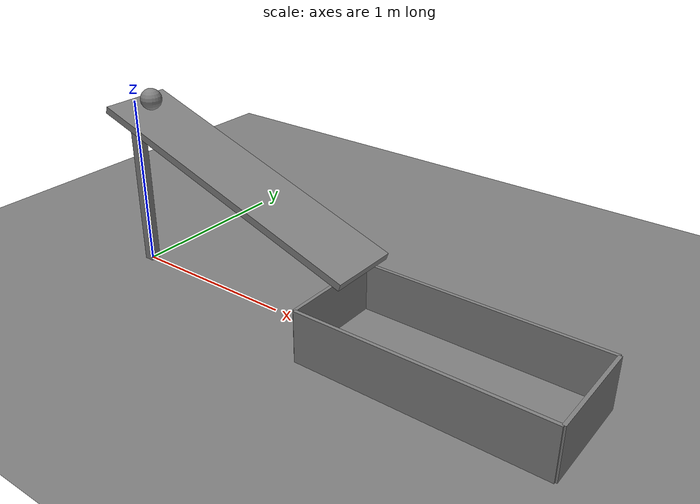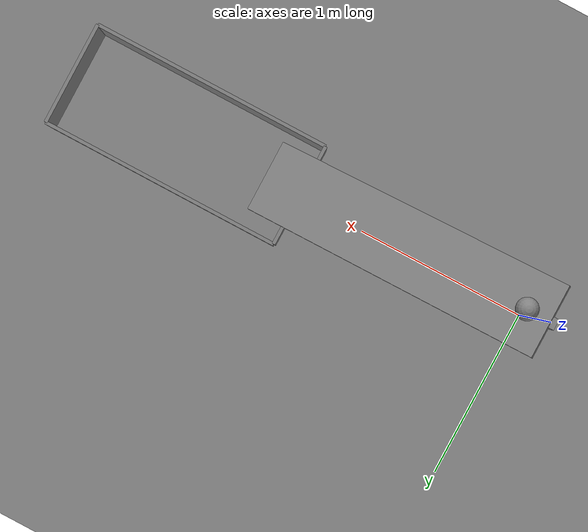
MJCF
<mujoco model="ramp_to_cup">
  <option timestep="0.002"/>
  <worldbody>
    <geom name="floor" type="plane" size="6 6 0.1" friction="0.8 0.005 0.002"/>
    <geom name="ramp_deck" type="box" pos="0.8000 0 0.7250" euler="0 18.9704 0" size="0.8459 0.2 0.02"/>
    <geom name="ramp_leg" type="box" pos="0.0000 0 0.5000" size="0.03 0.03 0.5000"/>
    <body name="ball" pos="0.1398 0 1.0376">
      <freejoint/>
      <geom name="ball" type="sphere" size="0.06" mass="0.2" condim="6" friction="0.8 0.01 0.004" solref="0.01 1"/>
    </body>
    <body name="cup" pos="2.1000 0 0">
      <geom name="cup_base" type="box" pos="0 0 0.01" size="0.700 0.300 0.01" condim="6" friction="1.0 0.01 0.02" solref="0.01 1"/>
      <geom name="cup_near" type="box" pos="-0.700 0 0.150" size="0.01 0.300 0.150" condim="6" friction="1.0 0.01 0.02" solref="0.01 1"/>
      <geom name="cup_far" type="box" pos="0.700 0 0.150" size="0.01 0.300 0.150" condim="6" friction="1.0 0.01 0.02" solref="0.01 1"/>
      <geom name="cup_left" type="box" pos="0 0.300 0.150" size="0.700 0.01 0.150" condim="6" friction="1.0 0.01 0.02" solref="0.01 1"/>
      <geom name="cup_right" type="box" pos="0 -0.300 0.150" size="0.700 0.01 0.150" condim="6" friction="1.0 0.01 0.02" solref="0.01 1"/>
    </body>
  </worldbody>
</mujoco>
